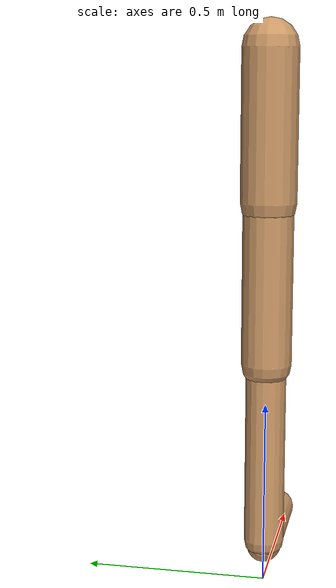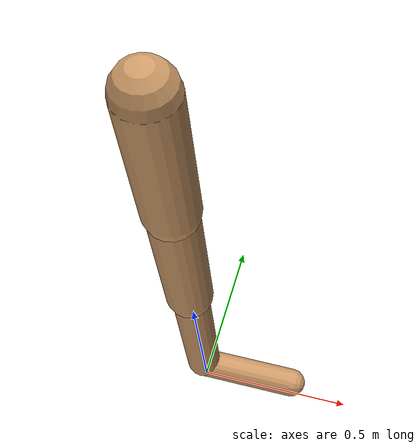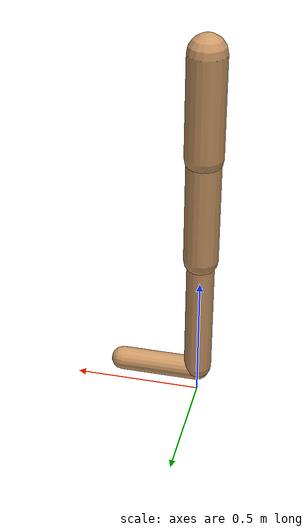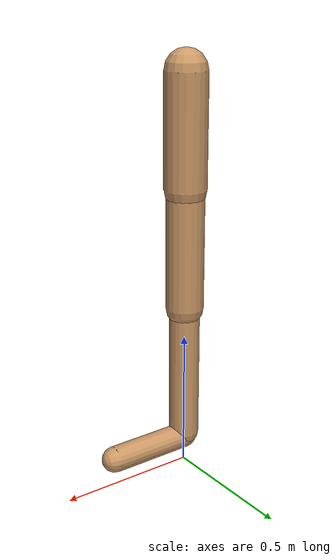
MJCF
<mujoco model="walker2d">
  <compiler angle="degree" coordinate="global" inertiafromgeom="true" />
  <default>
    <joint armature="0.01" damping=".1" limited="true" />
    <geom conaffinity="0" condim="3" contype="1" density="1000" friction="0.8 .1 .1" rgba="0.8 0.6 .4 1" />
  </default>
  <option integrator="RK4" timestep="0.002" />
  <worldbody>

    <body name="torso" pos="0 0 -0.03554775518950119">
      <joint armature="0" axis="1 0 0" damping="0" limited="false" name="ignorex" pos="0 0 0" stiffness="0" type="slide" />
      <joint armature="0" axis="0 0 1" damping="0" limited="false" name="ignorez" pos="0 0 0" ref="1.25" stiffness="0" type="slide" />
      <joint armature="0" axis="0 1 0" damping="0" limited="false" name="ignorey" pos="0 0 0" stiffness="0" type="hinge" />
      <geom fromto="0 0 1.45 0 0 1.05" name="torso_geom" size="0.07528642610703502" type="capsule" />
      <body name="thigh">
        <joint axis="0 -1 0" name="thigh_joint" pos="0 0 1.05" range="-150 0" type="hinge" />
        <geom fromto="0.0 0.0 1.05 0.0 0.0 0.6168384103529216" name="thigh_geom" size="0.06813939913827817" type="capsule" />
        <body name="leg" pos="0.0 0.0 0.016838410352921662">
          <joint axis="0 -1 0" name="leg_joint" pos="0 0 0.6" range="-150 0" type="hinge" />
          <geom fromto="0.0 0.0 0.6 0.0 0.0 0.11870934483657958" name="leg_geom" size="0.054511519310622536" type="capsule" />
          <body name="foot" pos="0.0 0.0 0.018709344836579572">
            <joint axis="0 -1 0" name="foot_joint" pos="0 0 0.1" range="-45 45" type="hinge" />
            <geom fromto="-0.0 0.0 0.09999999999999999 0.30849295704675433 0.0 0.09999999999999999" name="foot_geom" size="0.04659983114740108" type="capsule" />
          </body>
        </body>
      </body>

      <body name="thigh_left">
        <joint axis="0 -1 0" name="thigh_left_joint" pos="0 0 1.05" range="-150 0" type="hinge" />
        <geom fromto="0.0 0.0 1.05 0.0 0.0 0.6168384103529216" name="thigh_left_geom" rgba=".7 .3 .6 1" size="0.06813939913827817" type="capsule" />
        <body name="leg_left" pos="0.0 0.0 0.016838410352921662">
          <joint axis="0 -1 0" name="leg_left_joint" pos="0 0 0.6" range="-150 0" type="hinge" />
          <geom fromto="0.0 0.0 0.6 0.0 0.0 0.11870934483657958" name="leg_left_geom" rgba=".7 .3 .6 1" size="0.054511519310622536" type="capsule" />
          <body name="foot_left" pos="0.0 0.0 0.018709344836579572">
            <joint axis="0 -1 0" name="foot_left_joint" pos="0 0 0.1" range="-45 45" type="hinge" />
            <geom fromto="-0.0 0.0 0.09999999999999999 0.30849295704675433 0.0 0.09999999999999999" name="foot_left_geom" rgba=".7 .3 .6 1" size="0.04659983114740108" type="capsule" />
          </body>
        </body>
      </body>
    </body>
  </worldbody>
  <actuator>

    <motor ctrllimited="true" ctrlrange="-1.0 1.0" gear="100" joint="thigh_joint" />
    <motor ctrllimited="true" ctrlrange="-1.0 1.0" gear="100" joint="leg_joint" />
    <motor ctrllimited="true" ctrlrange="-1.0 1.0" gear="100" joint="foot_joint" />
    <motor ctrllimited="true" ctrlrange="-1.0 1.0" gear="100" joint="thigh_left_joint" />
    <motor ctrllimited="true" ctrlrange="-1.0 1.0" gear="100" joint="leg_left_joint" />
    <motor ctrllimited="true" ctrlrange="-1.0 1.0" gear="100" joint="foot_left_joint" />

  </actuator>
</mujoco>
